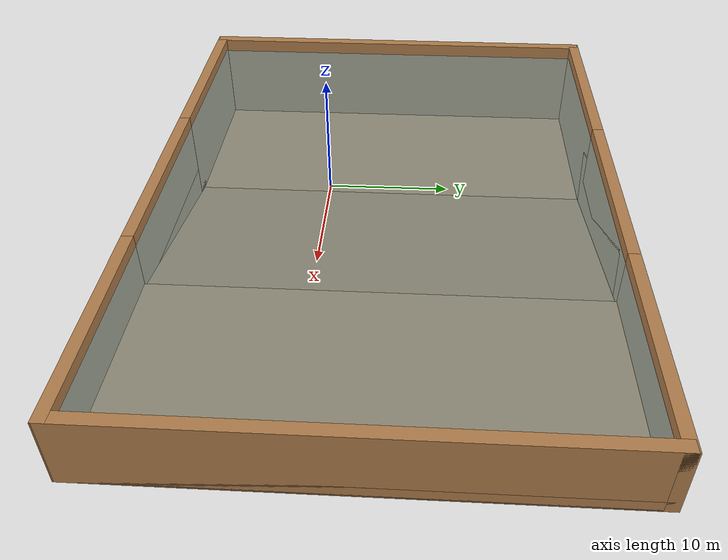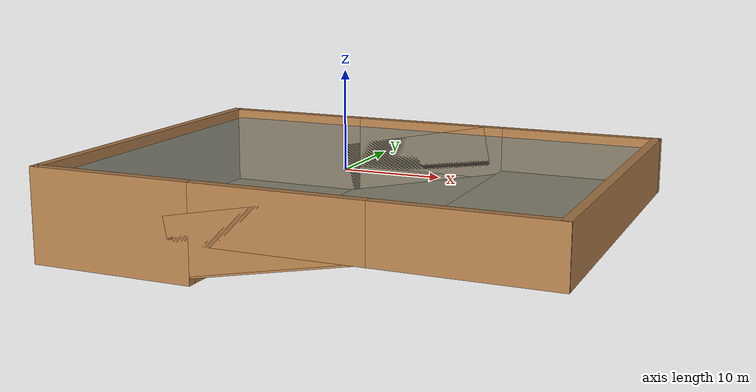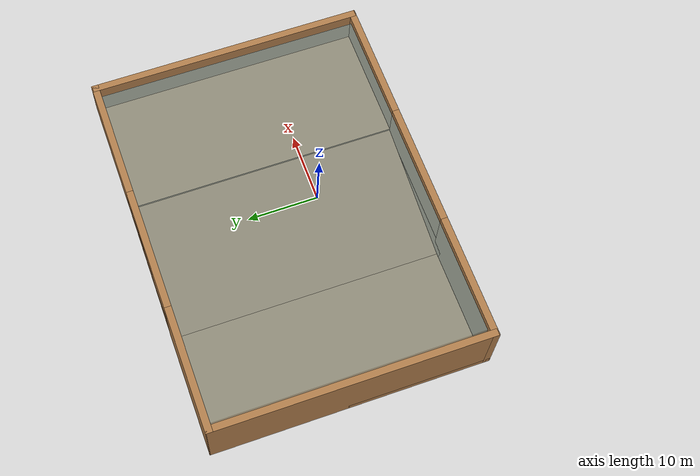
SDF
<sdf version="1.9">
 <world name="multi_lrauv">
  <physics name="1ms" type="ode">
   <max_step_size>0.001</max_step_size>
   <real_time_factor>1.0</real_time_factor>
  </physics>
  <plugin filename="gz-sim-physics-system" name="gz::sim::systems::Physics"/>
  <plugin filename="gz-sim-user-commands-system" name="gz::sim::systems::UserCommands"/>
  <plugin filename="gz-sim-scene-broadcaster-system" name="gz::sim::systems::SceneBroadcaster"/>
  <plugin filename="gz-sim-imu-system" name="gz::sim::systems::Imu"/>
  <plugin filename="gz-sim-contact-system" name="gz::sim::systems::Contact"/>
  <plugin filename="gz-sim-buoyancy-system" name="gz::sim::systems::Buoyancy">
   <uniform_fluid_density>1000</uniform_fluid_density>
  </plugin>
  <plugin filename="gz-sim-particle-emitter-system" name="gz::sim::systems::ParticleEmitter"/>
  <plugin filename="gz-sim-sensors-system" name="gz::sim::systems::Sensors">
   <render_engine>ogre2</render_engine>
  </plugin>
  <plugin filename="OdometerSystem" name="custom::OdometerSystem"/>
  <light type="directional" name="sun">
   <pose>0 0 80 0 0 0</pose>
   <diffuse>1 1 1 1</diffuse>
   <specular>0.5 0.5 0.5 1</specular>
   <attenuation>
    <range>1000</range>
    <constant>0.9</constant>
    <linear>0.01</linear>
    <quadratic>0.001</quadratic>
   </attenuation>
   <direction>-0.5 0.1 -0.9</direction>
  </light>
  <model name="roof">
   <pose>0 4.6 .2  0 0 0</pose>
   <static>true</static>
   <link name="roof_link">
    <collision name="roof_collision"><geometry><box><size>55 40 .1</size></box></geometry></collision>
   </link>
  </model>
  <model name="pool">
   <pose>0 4.6 -2 0 0 0</pose>
   <static>true</static>
   <link name="pool_link">
    <visual name="visual">
     <geometry><box><size>51 40 4</size></box></geometry>
     <material><ambient>0.478 0.647 0.702 0.5</ambient><diffuse>0.478 0.647 0.702 0.5</diffuse></material>
    </visual>
   </link>
  </model>
  <model name="shallow_wall">
   <pose>26.5 4.6 -2 0 0 0</pose>
   <static>true</static>
   <link name="shallow_wall_link">
    <collision name="shallow_wall_collision"><geometry><box><size>1 40 6</size></box></geometry></collision>
    <visual name="visual">
     <geometry><box><size>1 40 6</size></box></geometry>
     <material>
      <ambient>0.6 0.4 0.2 1</ambient>
      <diffuse>0.7 0.5 0.3 1</diffuse>
      <specular>0.8 0.6 0.4 1</specular>
     </material>
    </visual>
   </link>
  </model>
  <model name="shallow_left_wall">
   <pose>18 24.2 -2 0 0 0</pose>
   <static>true</static>
   <link name="shallow_left_wall_link">
    <collision name="shallow_left_wall_collision"><geometry><box><size>18 1 6</size></box></geometry></collision>
    <visual name="visual">
     <geometry><box><size>18 1 6</size></box></geometry>
     <material>
      <ambient>0.6 0.4 0.2 1</ambient>
      <diffuse>0.7 0.5 0.3 1</diffuse>
      <specular>0.8 0.6 0.4 1</specular>
     </material>
    </visual>
   </link>
  </model>
  <model name="shallow_right_wall2">
   <pose>0 -15 -2 0 0 0</pose>
   <static>true</static>
   <link name="shallow_right_wall2_link">
    <collision name="shallow_right_wall2_collision">
     <geometry><box><size>18 1 6</size></box></geometry>
    </collision>
    <visual name="visual">
     <geometry><box><size>18 1 6</size></box></geometry>
     <material>
      <ambient>0.6 0.4 0.2 1</ambient>
      <diffuse>0.7 0.5 0.3 1</diffuse>
      <specular>0.8 0.6 0.4 1</specular>
     </material>
    </visual>
   </link>
  </model>
  <model name="shallow_left_wall2">
   <pose>0 24.2 -2 0 0 0</pose>
   <static>true</static>
   <link name="shallow_left_wall2_link">
    <collision name="shallow_right_wall2_collision">
     <geometry><box><size>18 1 6</size></box></geometry>
    </collision>
    <visual name="visual">
     <geometry><box><size>18 1 6</size></box></geometry>
     <material>
      <ambient>0.6 0.4 0.2 1</ambient>
      <diffuse>0.7 0.5 0.3 1</diffuse>
      <specular>0.8 0.6 0.4 1</specular>
     </material>
    </visual>
   </link>
  </model>
  <model name="slant_right_wall">
   <pose>-2.31 -15 -3.72 0 -0.19 0</pose>
   <static>true</static>
   <link name="slant_right_wall_link">
    <collision name="slant_right_wall_collision"><geometry><box><size>18 1 6</size></box></geometry></collision>
    <visual name="visual">
     <geometry><box><size>18 1 6</size></box></geometry>
     <material>
      <ambient>0.6 0.4 0.2 1</ambient>
      <diffuse>0.7 0.5 0.3 1</diffuse>
      <specular>0.8 0.6 0.4 1</specular>
     </material>
    </visual>
   </link>
  </model>
  <model name="slant_left_wall">
   <pose>-1.53 24.2 -3.66 0 -0.19 0</pose>
   <static>true</static>
   <link name="slant_left_wall_link">
    <collision name="slant_right_wall_collision"><geometry><box><size>18 1 6</size></box></geometry></collision>
    <visual name="visual">
     <geometry><box><size>18 1 6</size></box></geometry>
     <material>
      <ambient>0.6 0.4 0.2 1</ambient>
      <diffuse>0.7 0.5 0.3 1</diffuse>
      <specular>0.8 0.6 0.4 1</specular>
     </material>
    </visual>
   </link>
  </model>
  <model name="shallow_right_wall">
   <pose>18 -15 -2 0 0 0</pose>
   <static>true</static>
   <link name="shallow_right_wall_link">
    <collision name="shallow_right_wall_collision"><geometry><box><size>18 1 6</size></box></geometry></collision>
    <visual name="visual">
     <geometry><box><size>18 1 6</size></box></geometry>
     <material>
      <ambient>0.6 0.4 0.2 1</ambient>
      <diffuse>0.7 0.5 0.3 1</diffuse>
      <specular>0.8 0.6 0.4 1</specular>
     </material>
    </visual>
   </link>
  </model>
  <model name="shallow_ground">
   <pose>18 4.6 -4.5 0 0 0</pose>
   <static>true</static>
   <link name="shallow_ground_link">
    <collision name="shallow_ground_collision"><geometry><box><size>18 40 1</size></box></geometry></collision>
    <visual name="visual">
     <geometry><box><size>18 40 1</size></box></geometry>
     <material>
      <ambient>0.6 0.4 0.2 1</ambient>
      <diffuse>0.7 0.5 0.3 1</diffuse>
      <specular>0.8 0.6 0.4 1</specular>
     </material>
    </visual>
   </link>
  </model>
  <model name="slant_ground">
   <pose>-.19 4.6 -6.34 0 .19 3.14</pose>
   <static>true</static>
   <link name="slant_ground_link">
    <collision name="slant_ground_collision"><geometry><box><size>22 40 .5</size></box></geometry></collision>
    <visual name="visual">
     <geometry><box><size>22 40 .5</size></box></geometry>
     <material>
      <ambient>0.6 0.4 0.2 1</ambient>
      <diffuse>0.7 0.5 0.3 1</diffuse>
      <specular>0.8 0.6 0.4 1</specular>
     </material>
    </visual>
   </link>
  </model>
  <model name="deep_wall">
   <pose>-26.5 4.6 -4 0 0 1.5708</pose>
   <static>true</static>
   <link name="deep_wall_link">
    <collision name="deep_wall_collision"><geometry><box><size>40 1 10</size></box></geometry></collision>
    <visual name="visual">
     <geometry><box><size>40 1 10</size></box></geometry>
     <material>
      <ambient>0.6 0.4 0.2 1</ambient>
      <diffuse>0.7 0.5 0.3 1</diffuse>
      <specular>0.8 0.6 0.4 1</specular>
     </material>
    </visual>
   </link>
  </model>
  <model name="deep_left_wall">
   <pose>-18 24.2 -4 0 0 0</pose>
   <static>true</static>
   <link name="deep_left_wall_link">
    <collision name="deep_left_wall_collision"><geometry><box><size>18 1 10</size></box></geometry></collision>
    <visual name="visual">
     <geometry><box><size>18 1 10</size></box></geometry>
     <material>
      <ambient>0.6 0.4 0.2 1</ambient>
      <diffuse>0.7 0.5 0.3 1</diffuse>
      <specular>0.8 0.6 0.4 1</specular>
     </material>
    </visual>
   </link>
  </model>
  <model name="deep_right_wall">
   <pose>-18 -15 -4 0 0 0</pose>
   <static>true</static>
   <link name="deep_right_wall_link">
    <collision name="deep_right_wall_collision"><geometry><box><size>18 1 10</size></box></geometry></collision>
    <visual name="visual">
     <geometry><box><size>18 1 10</size></box></geometry>
     <material>
      <ambient>0.6 0.4 0.2 1</ambient>
      <diffuse>0.7 0.5 0.3 1</diffuse>
      <specular>0.8 0.6 0.4 1</specular>
     </material>
    </visual>
   </link>
  </model>
  <model name="deep_ground">
   <pose>-18 4.6 -8.5 0 0 0</pose>
   <static>true</static>
   <link name="deep_ground_link">
    <collision name="deep_ground_collision"><geometry><box><size>18 40 1</size></box></geometry></collision>
    <visual name="visual">
     <geometry><box><size>18 40 1</size></box></geometry>
     <material>
      <ambient>0.6 0.4 0.2 1</ambient>
      <diffuse>0.7 0.5 0.3 1</diffuse>
      <specular>0.8 0.6 0.4 1</specular>
     </material>
    </visual>
   </link>
  </model>
 </world>
</sdf>
